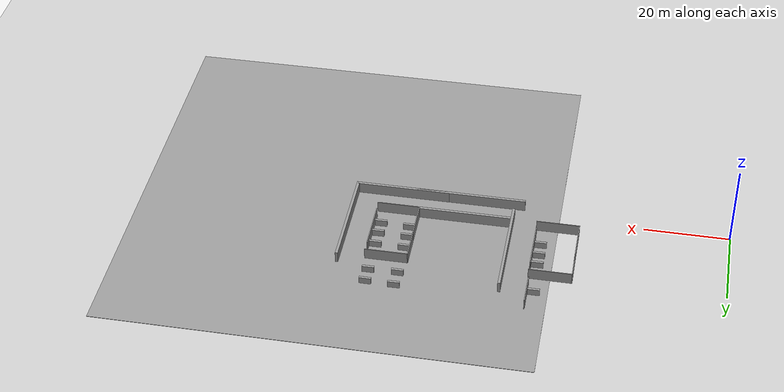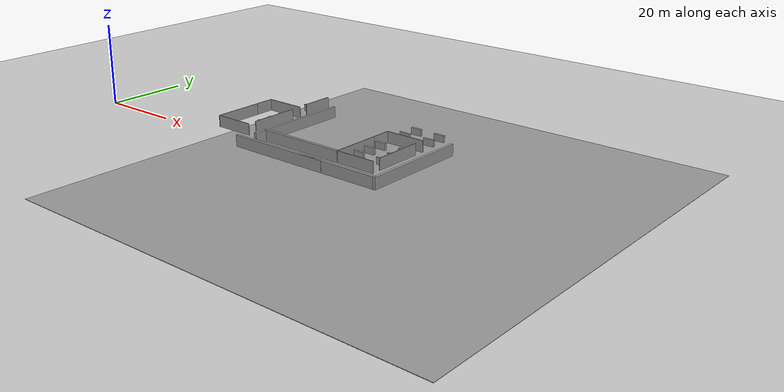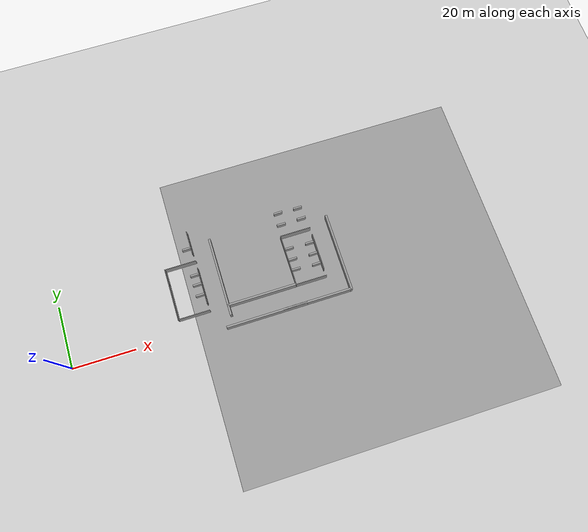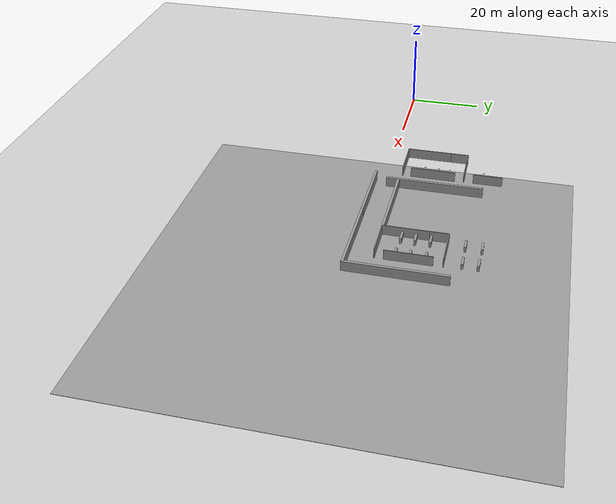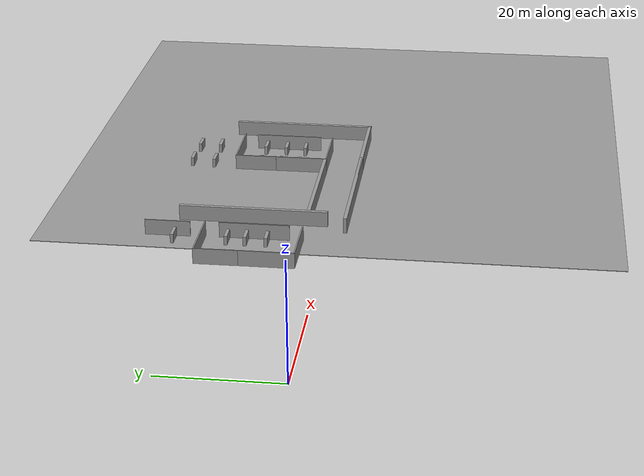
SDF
<sdf version="1.7">
 <world name="default">
  <model name="ground_plane">
   <static>1</static>
   <link name="link">
    <collision name="collision">
     <geometry><plane><normal>0 0 1</normal><size>100 100</size></plane></geometry>
     <surface><friction><ode><mu>100</mu><mu2>50</mu2></ode></friction></surface>
    </collision>
    <visual name="visual">
     <cast_shadows>0</cast_shadows>
     <geometry><plane><normal>0 0 1</normal><size>100 100</size></plane></geometry>
     <material>
      <script><uri>file://media/materials/scripts/gazebo.material</uri><name>Gazebo/Grey</name></script>
     </material>
    </visual>
   </link>
  </model>
  <model name="grey_wall_long_1">
   <link name="link">
    <pose>0 0 1.37589 0 -0 0</pose>
    <inertial>
     <inertia><ixx>0</ixx><ixy>0</ixy><ixz>0</ixz><iyy>0</iyy><iyz>0</iyz><izz>0</izz></inertia>
     <mass>0</mass>
    </inertial>
    <visual name="visual">
     <cast_shadows>0</cast_shadows>
     <geometry><box><size>25.8815 0.642976 2.8</size></box></geometry>
     <material>
      <script>
       <uri>model://grey_wall/materials/scripts</uri>
       <uri>model://grey_wall/materials/textures</uri>
       <name>vrc/grey_wall</name>
      </script>
      <shader type="pixel"><normal_map>__default__</normal_map></shader>
      <ambient>1 1 1 1</ambient>
      <diffuse>1 1 1 1</diffuse>
      <specular>0 0 0 1</specular>
      <emissive>0 0 0 1</emissive>
     </material>
    </visual>
    <collision name="collision">
     <geometry><box><size>25.8815 0.642976 2.8</size></box></geometry>
     <surface>
      <friction>
       <ode><mu>1</mu><mu2>1</mu2><fdir1>0 0 0</fdir1><slip1>0</slip1><slip2>0</slip2></ode>
       <torsional>
        <coefficient>1</coefficient>
        <patch_radius>0</patch_radius>
        <surface_radius>0</surface_radius>
        <use_patch_radius>1</use_patch_radius>
        <ode><slip>0</slip></ode>
       </torsional>
      </friction>
      <bounce><restitution_coefficient>0</restitution_coefficient><threshold>1e+06</threshold></bounce>
      <contact>
       <collide_without_contact>0</collide_without_contact>
       <collide_without_contact_bitmask>1</collide_without_contact_bitmask>
       <collide_bitmask>1</collide_bitmask>
       <ode>
        <soft_cfm>0</soft_cfm>
        <soft_erp>0.2</soft_erp>
        <kp>1e+13</kp>
        <kd>1</kd>
        <max_vel>0.01</max_vel>
        <min_depth>0</min_depth>
       </ode>
       <bullet>
        <split_impulse>1</split_impulse>
        <split_impulse_penetration_threshold>-0.01</split_impulse_penetration_threshold>
        <soft_cfm>0</soft_cfm>
        <soft_erp>0.2</soft_erp>
        <kp>1e+13</kp>
        <kd>1</kd>
       </bullet>
      </contact>
     </surface>
    </collision>
   </link>
   <static>1</static>
   <pose>61.3257 -2.37865 0 0 -0 0</pose>
  </model>
  <model name="ground_plane_1">
   <static>1</static>
   <link name="link">
    <collision name="collision">
     <geometry><plane><normal>0 0 1</normal><size>100 100</size></plane></geometry>
     <surface><friction><ode><mu>100</mu><mu2>50</mu2></ode></friction></surface>
    </collision>
    <visual name="visual">
     <cast_shadows>0</cast_shadows>
     <geometry><plane><normal>0 0 1</normal><size>100 100</size></plane></geometry>
     <material>
      <script><uri>file://media/materials/scripts/gazebo.material</uri><name>Gazebo/Grey</name></script>
     </material>
    </visual>
   </link>
   <pose>89.798 0.232818 0 0 -0 0</pose>
  </model>
  <model name="jiaoshi_clone_clone_clone_2">
   <model name="grey_wall">
    <static>1</static>
    <link name="link">
     <pose>0 0 1.4 0 -0 0</pose>
     <collision name="collision"><geometry><box><size>7.5 0.2 2.8</size></box></geometry></collision>
     <visual name="visual">
      <cast_shadows>0</cast_shadows>
      <geometry><box><size>7.5 0.2 2.8</size></box></geometry>
      <material>
       <script>
        <uri>model://grey_wall/materials/scripts</uri>
        <uri>model://grey_wall/materials/textures</uri>
        <name>vrc/grey_wall</name>
       </script>
      </material>
     </visual>
    </link>
    <pose>-3.38172 4.2623 0 0 0 -1.56473</pose>
   </model>
   <model name="grey_wall_10m">
    <link name="link">
     <pose>1.25079 -0.023082 1.4 0 -0 0</pose>
     <inertial>
      <inertia><ixx>0</ixx><ixy>0</ixy><ixz>0</ixz><iyy>0</iyy><iyz>0</iyz><izz>0</izz></inertia>
      <mass>0</mass>
     </inertial>
     <visual name="visual">
      <cast_shadows>0</cast_shadows>
      <geometry><box><size>10.0157 0.2 2.8</size></box></geometry>
      <material>
       <script>
        <uri>model://grey_wall/materials/scripts</uri>
        <uri>model://grey_wall/materials/textures</uri>
        <name>vrc/grey_wall</name>
       </script>
       <shader type="pixel"/>
       <ambient>1 1 1 1</ambient>
       <diffuse>1 1 1 1</diffuse>
       <specular>0 0 0 1</specular>
       <emissive>0 0 0 1</emissive>
      </material>
     </visual>
     <collision name="collision">
      <geometry><box><size>10.0157 0.2 2.8</size></box></geometry>
      <surface>
       <friction>
        <ode><mu>1</mu><mu2>1</mu2><fdir1>0 0 0</fdir1><slip1>0</slip1><slip2>0</slip2></ode>
        <torsional>
         <coefficient>1</coefficient>
         <patch_radius>0</patch_radius>
         <surface_radius>0</surface_radius>
         <use_patch_radius>1</use_patch_radius>
         <ode><slip>0</slip></ode>
        </torsional>
       </friction>
       <bounce><restitution_coefficient>0</restitution_coefficient><threshold>1e+06</threshold></bounce>
       <contact>
        <collide_without_contact>0</collide_without_contact>
        <collide_without_contact_bitmask>1</collide_without_contact_bitmask>
        <collide_bitmask>1</collide_bitmask>
        <ode>
         <soft_cfm>0</soft_cfm>
         <soft_erp>0.2</soft_erp>
         <kp>1e+13</kp>
         <kd>1</kd>
         <max_vel>0.01</max_vel>
         <min_depth>0</min_depth>
        </ode>
        <bullet>
         <split_impulse>1</split_impulse>
         <split_impulse_penetration_threshold>-0.01</split_impulse_penetration_threshold>
         <soft_cfm>0</soft_cfm>
         <soft_erp>0.2</soft_erp>
         <kp>1e+13</kp>
         <kd>1</kd>
        </bullet>
       </contact>
      </surface>
     </collision>
    </link>
    <static>1</static>
    <pose>0.433183 -8.77625 0 0 -0 0</pose>
   </model>
   <model name="grey_wall_10m_0">
    <link name="link">
     <pose>1.25079 -0.023082 1.4 0 -0 0</pose>
     <inertial>
      <inertia><ixx>0</ixx><ixy>0</ixy><ixz>0</ixz><iyy>0</iyy><iyz>0</iyz><izz>0</izz></inertia>
      <mass>0</mass>
     </inertial>
     <visual name="visual">
      <cast_shadows>0</cast_shadows>
      <geometry><box><size>10.0157 0.2 2.8</size></box></geometry>
      <material>
       <script>
        <uri>model://grey_wall/materials/scripts</uri>
        <uri>model://grey_wall/materials/textures</uri>
        <name>vrc/grey_wall</name>
       </script>
       <shader type="pixel"/>
       <ambient>1 1 1 1</ambient>
       <diffuse>1 1 1 1</diffuse>
       <specular>0 0 0 1</specular>
       <emissive>0 0 0 1</emissive>
      </material>
     </visual>
     <collision name="collision">
      <geometry><box><size>10.0157 0.2 2.8</size></box></geometry>
      <surface>
       <friction>
        <ode><mu>1</mu><mu2>1</mu2><fdir1>0 0 0</fdir1><slip1>0</slip1><slip2>0</slip2></ode>
        <torsional>
         <coefficient>1</coefficient>
         <patch_radius>0</patch_radius>
         <surface_radius>0</surface_radius>
         <use_patch_radius>1</use_patch_radius>
         <ode><slip>0</slip></ode>
        </torsional>
       </friction>
       <bounce><restitution_coefficient>0</restitution_coefficient><threshold>1e+06</threshold></bounce>
       <contact>
        <collide_without_contact>0</collide_without_contact>
        <collide_without_contact_bitmask>1</collide_without_contact_bitmask>
        <collide_bitmask>1</collide_bitmask>
        <ode>
         <soft_cfm>0</soft_cfm>
         <soft_erp>0.2</soft_erp>
         <kp>1e+13</kp>
         <kd>1</kd>
         <max_vel>0.01</max_vel>
         <min_depth>0</min_depth>
        </ode>
        <bullet>
         <split_impulse>1</split_impulse>
         <split_impulse_penetration_threshold>-0.01</split_impulse_penetration_threshold>
         <soft_cfm>0</soft_cfm>
         <soft_erp>0.2</soft_erp>
         <kp>1e+13</kp>
         <kd>1</kd>
        </bullet>
       </contact>
      </surface>
     </collision>
    </link>
    <static>1</static>
    <pose>0.377364 7.92573 0 0 -0 0</pose>
   </model>
   <model name="grey_wall_12m_vertial">
    <link name="link">
     <pose>0.289112 -0.003891 1.4 0 0 -1.5701</pose>
     <inertial>
      <inertia><ixx>0</ixx><ixy>0</ixy><ixz>0</ixz><iyy>0</iyy><iyz>0</iyz><izz>0</izz></inertia>
      <mass>0</mass>
     </inertial>
     <visual name="visual">
      <cast_shadows>0</cast_shadows>
      <geometry><box><size>12.0527 0.2 2.8</size></box></geometry>
      <material>
       <script>
        <uri>model://grey_wall/materials/scripts</uri>
        <uri>model://grey_wall/materials/textures</uri>
        <name>vrc/grey_wall</name>
       </script>
       <shader type="pixel"/>
       <ambient>1 1 1 1</ambient>
       <diffuse>1 1 1 1</diffuse>
       <specular>0 0 0 1</specular>
       <emissive>0 0 0 1</emissive>
      </material>
     </visual>
     <collision name="collision">
      <geometry><box><size>12.0527 0.2 2.8</size></box></geometry>
      <surface>
       <friction>
        <ode><mu>1</mu><mu2>1</mu2><fdir1>0 0 0</fdir1><slip1>0</slip1><slip2>0</slip2></ode>
        <torsional>
         <coefficient>1</coefficient>
         <patch_radius>0</patch_radius>
         <surface_radius>0</surface_radius>
         <use_patch_radius>1</use_patch_radius>
         <ode><slip>0</slip></ode>
        </torsional>
       </friction>
       <bounce><restitution_coefficient>0</restitution_coefficient><threshold>1e+06</threshold></bounce>
       <contact>
        <collide_without_contact>0</collide_without_contact>
        <collide_without_contact_bitmask>1</collide_without_contact_bitmask>
        <collide_bitmask>1</collide_bitmask>
        <ode>
         <soft_cfm>0</soft_cfm>
         <soft_erp>0.2</soft_erp>
         <kp>1e+13</kp>
         <kd>1</kd>
         <max_vel>0.01</max_vel>
         <min_depth>0</min_depth>
        </ode>
        <bullet>
         <split_impulse>1</split_impulse>
         <split_impulse_penetration_threshold>-0.01</split_impulse_penetration_threshold>
         <soft_cfm>0</soft_cfm>
         <soft_erp>0.2</soft_erp>
         <kp>1e+13</kp>
         <kd>1</kd>
        </bullet>
       </contact>
      </surface>
     </collision>
    </link>
    <static>1</static>
    <pose>-3.63668 -2.87268 0 0 -0 0</pose>
   </model>
   <model name="grey_wall_12m_vertial_0">
    <link name="link">
     <pose>0.289112 -0.003891 1.4 0 0 -1.5701</pose>
     <inertial>
      <inertia><ixx>0</ixx><ixy>0</ixy><ixz>0</ixz><iyy>0</iyy><iyz>0</iyz><izz>0</izz></inertia>
      <mass>0</mass>
     </inertial>
     <visual name="visual">
      <cast_shadows>0</cast_shadows>
      <geometry><box><size>12.0527 0.2 2.8</size></box></geometry>
      <material>
       <script>
        <uri>model://grey_wall/materials/scripts</uri>
        <uri>model://grey_wall/materials/textures</uri>
        <name>vrc/grey_wall</name>
       </script>
       <shader type="pixel"/>
       <ambient>1 1 1 1</ambient>
       <diffuse>1 1 1 1</diffuse>
       <specular>0 0 0 1</specular>
       <emissive>0 0 0 1</emissive>
      </material>
     </visual>
     <collision name="collision">
      <geometry><box><size>12.0527 0.2 2.8</size></box></geometry>
      <surface>
       <friction>
        <ode><mu>1</mu><mu2>1</mu2><fdir1>0 0 0</fdir1><slip1>0</slip1><slip2>0</slip2></ode>
        <torsional>
         <coefficient>1</coefficient>
         <patch_radius>0</patch_radius>
         <surface_radius>0</surface_radius>
         <use_patch_radius>1</use_patch_radius>
         <ode><slip>0</slip></ode>
        </torsional>
       </friction>
       <bounce><restitution_coefficient>0</restitution_coefficient><threshold>1e+06</threshold></bounce>
       <contact>
        <collide_without_contact>0</collide_without_contact>
        <collide_without_contact_bitmask>1</collide_without_contact_bitmask>
        <collide_bitmask>1</collide_bitmask>
        <ode>
         <soft_cfm>0</soft_cfm>
         <soft_erp>0.2</soft_erp>
         <kp>1e+13</kp>
         <kd>1</kd>
         <max_vel>0.01</max_vel>
         <min_depth>0</min_depth>
        </ode>
        <bullet>
         <split_impulse>1</split_impulse>
         <split_impulse_penetration_threshold>-0.01</split_impulse_penetration_threshold>
         <soft_cfm>0</soft_cfm>
         <soft_erp>0.2</soft_erp>
         <kp>1e+13</kp>
         <kd>1</kd>
        </bullet>
       </contact>
      </surface>
     </collision>
    </link>
    <static>1</static>
    <pose>6.20786 -0.539083 0 0 -0 0</pose>
   </model>
   <static>0</static>
   <pose>38.2185 13.1543 0 0 -0 0</pose>
  </model>
  <model name="grey_wall_long_term_clone_1">
   <link name="link">
    <pose>-1.74587 -0.378849 1.37589 0 -0 0</pose>
    <inertial>
     <inertia><ixx>0</ixx><ixy>0</ixy><ixz>0</ixz><iyy>0</iyy><iyz>0</iyz><izz>0</izz></inertia>
     <mass>0</mass>
    </inertial>
    <visual name="visual">
     <cast_shadows>0</cast_shadows>
     <geometry><box><size>22.1596 0.642976 2.8</size></box></geometry>
     <material>
      <script>
       <uri>model://grey_wall/materials/scripts</uri>
       <uri>model://grey_wall/materials/textures</uri>
       <name>vrc/grey_wall</name>
      </script>
      <shader type="pixel"><normal_map>__default__</normal_map></shader>
      <ambient>1 1 1 1</ambient>
      <diffuse>1 1 1 1</diffuse>
      <specular>0 0 0 1</specular>
      <emissive>0 0 0 1</emissive>
     </material>
    </visual>
    <collision name="collision">
     <geometry><box><size>22.1596 0.642976 2.8</size></box></geometry>
     <surface>
      <friction>
       <ode><mu>1</mu><mu2>1</mu2><fdir1>0 0 0</fdir1><slip1>0</slip1><slip2>0</slip2></ode>
       <torsional>
        <coefficient>1</coefficient>
        <patch_radius>0</patch_radius>
        <surface_radius>0</surface_radius>
        <use_patch_radius>1</use_patch_radius>
        <ode><slip>0</slip></ode>
       </torsional>
      </friction>
      <bounce><restitution_coefficient>0</restitution_coefficient><threshold>1e+06</threshold></bounce>
      <contact>
       <collide_without_contact>0</collide_without_contact>
       <collide_without_contact_bitmask>1</collide_without_contact_bitmask>
       <collide_bitmask>1</collide_bitmask>
       <ode>
        <soft_cfm>0</soft_cfm>
        <soft_erp>0.2</soft_erp>
        <kp>1e+13</kp>
        <kd>1</kd>
        <max_vel>0.01</max_vel>
        <min_depth>0</min_depth>
       </ode>
       <bullet>
        <split_impulse>1</split_impulse>
        <split_impulse_penetration_threshold>-0.01</split_impulse_penetration_threshold>
        <soft_cfm>0</soft_cfm>
        <soft_erp>0.2</soft_erp>
        <kp>1e+13</kp>
        <kd>1</kd>
       </bullet>
      </contact>
     </surface>
    </collision>
   </link>
   <static>1</static>
   <pose>63.3055 4.59056 0 0 -0 0</pose>
  </model>
  <model name="jiaoshi_clone_clone_clone_0_clone_1">
   <model name="grey_wall">
    <static>1</static>
    <link name="link">
     <pose>0 0 1.4 0 -0 0</pose>
     <collision name="collision"><geometry><box><size>7.5 0.2 2.8</size></box></geometry></collision>
     <visual name="visual">
      <cast_shadows>0</cast_shadows>
      <geometry><box><size>7.5 0.2 2.8</size></box></geometry>
      <material>
       <script>
        <uri>model://grey_wall/materials/scripts</uri>
        <uri>model://grey_wall/materials/textures</uri>
        <name>vrc/grey_wall</name>
       </script>
      </material>
     </visual>
    </link>
    <pose>-3.38172 4.2623 0 0 0 -1.56473</pose>
   </model>
   <model name="grey_wall_10m">
    <link name="link">
     <pose>1.25079 -0.023082 1.4 0 -0 0</pose>
     <inertial>
      <inertia><ixx>0</ixx><ixy>0</ixy><ixz>0</ixz><iyy>0</iyy><iyz>0</iyz><izz>0</izz></inertia>
      <mass>0</mass>
     </inertial>
     <visual name="visual">
      <cast_shadows>0</cast_shadows>
      <geometry><box><size>10.0157 0.2 2.8</size></box></geometry>
      <material>
       <script>
        <uri>model://grey_wall/materials/scripts</uri>
        <uri>model://grey_wall/materials/textures</uri>
        <name>vrc/grey_wall</name>
       </script>
       <shader type="pixel"/>
       <ambient>1 1 1 1</ambient>
       <diffuse>1 1 1 1</diffuse>
       <specular>0 0 0 1</specular>
       <emissive>0 0 0 1</emissive>
      </material>
     </visual>
     <collision name="collision">
      <geometry><box><size>10.0157 0.2 2.8</size></box></geometry>
      <surface>
       <friction>
        <ode><mu>1</mu><mu2>1</mu2><fdir1>0 0 0</fdir1><slip1>0</slip1><slip2>0</slip2></ode>
        <torsional>
         <coefficient>1</coefficient>
         <patch_radius>0</patch_radius>
         <surface_radius>0</surface_radius>
         <use_patch_radius>1</use_patch_radius>
         <ode><slip>0</slip></ode>
        </torsional>
       </friction>
       <bounce><restitution_coefficient>0</restitution_coefficient><threshold>1e+06</threshold></bounce>
       <contact>
        <collide_without_contact>0</collide_without_contact>
        <collide_without_contact_bitmask>1</collide_without_contact_bitmask>
        <collide_bitmask>1</collide_bitmask>
        <ode>
         <soft_cfm>0</soft_cfm>
         <soft_erp>0.2</soft_erp>
         <kp>1e+13</kp>
         <kd>1</kd>
         <max_vel>0.01</max_vel>
         <min_depth>0</min_depth>
        </ode>
        <bullet>
         <split_impulse>1</split_impulse>
         <split_impulse_penetration_threshold>-0.01</split_impulse_penetration_threshold>
         <soft_cfm>0</soft_cfm>
         <soft_erp>0.2</soft_erp>
         <kp>1e+13</kp>
         <kd>1</kd>
        </bullet>
       </contact>
      </surface>
     </collision>
    </link>
    <static>1</static>
    <pose>0.433183 -8.77625 0 0 -0 0</pose>
   </model>
   <model name="grey_wall_10m_0">
    <link name="link">
     <pose>1.25079 -0.023082 1.4 0 -0 0</pose>
     <inertial>
      <inertia><ixx>0</ixx><ixy>0</ixy><ixz>0</ixz><iyy>0</iyy><iyz>0</iyz><izz>0</izz></inertia>
      <mass>0</mass>
     </inertial>
     <visual name="visual">
      <cast_shadows>0</cast_shadows>
      <geometry><box><size>10.0157 0.2 2.8</size></box></geometry>
      <material>
       <script>
        <uri>model://grey_wall/materials/scripts</uri>
        <uri>model://grey_wall/materials/textures</uri>
        <name>vrc/grey_wall</name>
       </script>
       <shader type="pixel"/>
       <ambient>1 1 1 1</ambient>
       <diffuse>1 1 1 1</diffuse>
       <specular>0 0 0 1</specular>
       <emissive>0 0 0 1</emissive>
      </material>
     </visual>
     <collision name="collision">
      <geometry><box><size>10.0157 0.2 2.8</size></box></geometry>
      <surface>
       <friction>
        <ode><mu>1</mu><mu2>1</mu2><fdir1>0 0 0</fdir1><slip1>0</slip1><slip2>0</slip2></ode>
        <torsional>
         <coefficient>1</coefficient>
         <patch_radius>0</patch_radius>
         <surface_radius>0</surface_radius>
         <use_patch_radius>1</use_patch_radius>
         <ode><slip>0</slip></ode>
        </torsional>
       </friction>
       <bounce><restitution_coefficient>0</restitution_coefficient><threshold>1e+06</threshold></bounce>
       <contact>
        <collide_without_contact>0</collide_without_contact>
        <collide_without_contact_bitmask>1</collide_without_contact_bitmask>
        <collide_bitmask>1</collide_bitmask>
        <ode>
         <soft_cfm>0</soft_cfm>
         <soft_erp>0.2</soft_erp>
         <kp>1e+13</kp>
         <kd>1</kd>
         <max_vel>0.01</max_vel>
         <min_depth>0</min_depth>
        </ode>
        <bullet>
         <split_impulse>1</split_impulse>
         <split_impulse_penetration_threshold>-0.01</split_impulse_penetration_threshold>
         <soft_cfm>0</soft_cfm>
         <soft_erp>0.2</soft_erp>
         <kp>1e+13</kp>
         <kd>1</kd>
        </bullet>
       </contact>
      </surface>
     </collision>
    </link>
    <static>1</static>
    <pose>0.377364 7.92573 0 0 -0 0</pose>
   </model>
   <model name="grey_wall_12m_vertial">
    <link name="link">
     <pose>0.289112 -0.003891 1.4 0 0 -1.5701</pose>
     <inertial>
      <inertia><ixx>0</ixx><ixy>0</ixy><ixz>0</ixz><iyy>0</iyy><iyz>0</iyz><izz>0</izz></inertia>
      <mass>0</mass>
     </inertial>
     <visual name="visual">
      <cast_shadows>0</cast_shadows>
      <geometry><box><size>12.0527 0.2 2.8</size></box></geometry>
      <material>
       <script>
        <uri>model://grey_wall/materials/scripts</uri>
        <uri>model://grey_wall/materials/textures</uri>
        <name>vrc/grey_wall</name>
       </script>
       <shader type="pixel"/>
       <ambient>1 1 1 1</ambient>
       <diffuse>1 1 1 1</diffuse>
       <specular>0 0 0 1</specular>
       <emissive>0 0 0 1</emissive>
      </material>
     </visual>
     <collision name="collision">
      <geometry><box><size>12.0527 0.2 2.8</size></box></geometry>
      <surface>
       <friction>
        <ode><mu>1</mu><mu2>1</mu2><fdir1>0 0 0</fdir1><slip1>0</slip1><slip2>0</slip2></ode>
        <torsional>
         <coefficient>1</coefficient>
         <patch_radius>0</patch_radius>
         <surface_radius>0</surface_radius>
         <use_patch_radius>1</use_patch_radius>
         <ode><slip>0</slip></ode>
        </torsional>
       </friction>
       <bounce><restitution_coefficient>0</restitution_coefficient><threshold>1e+06</threshold></bounce>
       <contact>
        <collide_without_contact>0</collide_without_contact>
        <collide_without_contact_bitmask>1</collide_without_contact_bitmask>
        <collide_bitmask>1</collide_bitmask>
        <ode>
         <soft_cfm>0</soft_cfm>
         <soft_erp>0.2</soft_erp>
         <kp>1e+13</kp>
         <kd>1</kd>
         <max_vel>0.01</max_vel>
         <min_depth>0</min_depth>
        </ode>
        <bullet>
         <split_impulse>1</split_impulse>
         <split_impulse_penetration_threshold>-0.01</split_impulse_penetration_threshold>
         <soft_cfm>0</soft_cfm>
         <soft_erp>0.2</soft_erp>
         <kp>1e+13</kp>
         <kd>1</kd>
        </bullet>
       </contact>
      </surface>
     </collision>
    </link>
    <static>1</static>
    <pose>-3.63668 -2.87268 0 0 -0 0</pose>
   </model>
   <model name="grey_wall_12m_vertial_0">
    <link name="link">
     <pose>0.289112 -0.003891 1.4 0 0 -1.5701</pose>
     <inertial>
      <inertia><ixx>0</ixx><ixy>0</ixy><ixz>0</ixz><iyy>0</iyy><iyz>0</iyz><izz>0</izz></inertia>
      <mass>0</mass>
     </inertial>
     <visual name="visual">
      <cast_shadows>0</cast_shadows>
      <geometry><box><size>12.0527 0.2 2.8</size></box></geometry>
      <material>
       <script>
        <uri>model://grey_wall/materials/scripts</uri>
        <uri>model://grey_wall/materials/textures</uri>
        <name>vrc/grey_wall</name>
       </script>
       <shader type="pixel"/>
       <ambient>1 1 1 1</ambient>
       <diffuse>1 1 1 1</diffuse>
       <specular>0 0 0 1</specular>
       <emissive>0 0 0 1</emissive>
      </material>
     </visual>
     <collision name="collision">
      <geometry><box><size>12.0527 0.2 2.8</size></box></geometry>
      <surface>
       <friction>
        <ode><mu>1</mu><mu2>1</mu2><fdir1>0 0 0</fdir1><slip1>0</slip1><slip2>0</slip2></ode>
        <torsional>
         <coefficient>1</coefficient>
         <patch_radius>0</patch_radius>
         <surface_radius>0</surface_radius>
         <use_patch_radius>1</use_patch_radius>
         <ode><slip>0</slip></ode>
        </torsional>
       </friction>
       <bounce><restitution_coefficient>0</restitution_coefficient><threshold>1e+06</threshold></bounce>
       <contact>
        <collide_without_contact>0</collide_without_contact>
        <collide_without_contact_bitmask>1</collide_without_contact_bitmask>
        <collide_bitmask>1</collide_bitmask>
        <ode>
         <soft_cfm>0</soft_cfm>
         <soft_erp>0.2</soft_erp>
         <kp>1e+13</kp>
         <kd>1</kd>
         <max_vel>0.01</max_vel>
         <min_depth>0</min_depth>
        </ode>
        <bullet>
         <split_impulse>1</split_impulse>
         <split_impulse_penetration_threshold>-0.01</split_impulse_penetration_threshold>
         <soft_cfm>0</soft_cfm>
         <soft_erp>0.2</soft_erp>
         <kp>1e+13</kp>
         <kd>1</kd>
        </bullet>
       </contact>
      </surface>
     </collision>
    </link>
    <static>1</static>
    <pose>6.20786 -0.539083 0 0 -0 0</pose>
   </model>
   <static>0</static>
   <pose>76.0857 12.842 0 0 -0 0</pose>
  </model>
  <model name="grew_wall_long_vertial_1_clone_clone_1_clone">
   <model name="grey_wall_long">
    <link name="link">
     <pose>0 0 1.37589 0 -0 0</pose>
     <inertial>
      <inertia><ixx>0</ixx><ixy>0</ixy><ixz>0</ixz><iyy>0</iyy><iyz>0</iyz><izz>0</izz></inertia>
      <mass>0</mass>
     </inertial>
     <visual name="visual">
      <cast_shadows>0</cast_shadows>
      <geometry><box><size>25.8815 0.642976 2.8</size></box></geometry>
      <material>
       <script>
        <uri>model://grey_wall/materials/scripts</uri>
        <uri>model://grey_wall/materials/textures</uri>
        <name>vrc/grey_wall</name>
       </script>
       <shader type="pixel"><normal_map>__default__</normal_map></shader>
       <ambient>1 1 1 1</ambient>
       <diffuse>1 1 1 1</diffuse>
       <specular>0 0 0 1</specular>
       <emissive>0 0 0 1</emissive>
      </material>
     </visual>
     <collision name="collision">
      <geometry><box><size>25.8815 0.642976 2.8</size></box></geometry>
      <surface>
       <friction>
        <ode><mu>1</mu><mu2>1</mu2><fdir1>0 0 0</fdir1><slip1>0</slip1><slip2>0</slip2></ode>
        <torsional>
         <coefficient>1</coefficient>
         <patch_radius>0</patch_radius>
         <surface_radius>0</surface_radius>
         <use_patch_radius>1</use_patch_radius>
         <ode><slip>0</slip></ode>
        </torsional>
       </friction>
       <bounce><restitution_coefficient>0</restitution_coefficient><threshold>1e+06</threshold></bounce>
       <contact>
        <collide_without_contact>0</collide_without_contact>
        <collide_without_contact_bitmask>1</collide_without_contact_bitmask>
        <collide_bitmask>1</collide_bitmask>
        <ode>
         <soft_cfm>0</soft_cfm>
         <soft_erp>0.2</soft_erp>
         <kp>1e+13</kp>
         <kd>1</kd>
         <max_vel>0.01</max_vel>
         <min_depth>0</min_depth>
        </ode>
        <bullet>
         <split_impulse>1</split_impulse>
         <split_impulse_penetration_threshold>-0.01</split_impulse_penetration_threshold>
         <soft_cfm>0</soft_cfm>
         <soft_erp>0.2</soft_erp>
         <kp>1e+13</kp>
         <kd>1</kd>
        </bullet>
       </contact>
      </surface>
     </collision>
    </link>
    <static>1</static>
    <pose>1e-06 -0 0 0 -0 1.57003</pose>
   </model>
   <static>0</static>
   <pose>88.7842 10.2506 0 0 -0 0</pose>
  </model>
  <model name="grey_wall_long_term_clone_0_clone_0">
   <link name="link">
    <pose>-1.74587 -0.378849 1.37589 0 -0 0</pose>
    <inertial>
     <inertia><ixx>0</ixx><ixy>0</ixy><ixz>0</ixz><iyy>0</iyy><iyz>0</iyz><izz>0</izz></inertia>
     <mass>0</mass>
    </inertial>
    <visual name="visual">
     <cast_shadows>0</cast_shadows>
     <geometry><box><size>22.1596 0.642976 2.8</size></box></geometry>
     <material>
      <script>
       <uri>model://grey_wall/materials/scripts</uri>
       <uri>model://grey_wall/materials/textures</uri>
       <name>vrc/grey_wall</name>
      </script>
      <shader type="pixel"><normal_map>__default__</normal_map></shader>
      <ambient>1 1 1 1</ambient>
      <diffuse>1 1 1 1</diffuse>
      <specular>0 0 0 1</specular>
      <emissive>0 0 0 1</emissive>
     </material>
    </visual>
    <collision name="collision">
     <geometry><box><size>22.1596 0.642976 2.8</size></box></geometry>
     <surface>
      <friction>
       <ode><mu>1</mu><mu2>1</mu2><fdir1>0 0 0</fdir1><slip1>0</slip1><slip2>0</slip2></ode>
       <torsional>
        <coefficient>1</coefficient>
        <patch_radius>0</patch_radius>
        <surface_radius>0</surface_radius>
        <use_patch_radius>1</use_patch_radius>
        <ode><slip>0</slip></ode>
       </torsional>
      </friction>
      <bounce><restitution_coefficient>0</restitution_coefficient><threshold>1e+06</threshold></bounce>
      <contact>
       <collide_without_contact>0</collide_without_contact>
       <collide_without_contact_bitmask>1</collide_without_contact_bitmask>
       <collide_bitmask>1</collide_bitmask>
       <ode>
        <soft_cfm>0</soft_cfm>
        <soft_erp>0.2</soft_erp>
        <kp>1e+13</kp>
        <kd>1</kd>
        <max_vel>0.01</max_vel>
        <min_depth>0</min_depth>
       </ode>
       <bullet>
        <split_impulse>1</split_impulse>
        <split_impulse_penetration_threshold>-0.01</split_impulse_penetration_threshold>
        <soft_cfm>0</soft_cfm>
        <soft_erp>0.2</soft_erp>
        <kp>1e+13</kp>
        <kd>1</kd>
       </bullet>
      </contact>
     </surface>
    </collision>
   </link>
   <static>1</static>
   <pose>79.4268 -1.97771 0 0 -0 0</pose>
  </model>
  <model name="unit_box_clone_27">
   <pose>42.9421 26.1855 0.834396 -0 -3.2e-05 0.009633</pose>
   <link name="link">
    <inertial>
     <mass>1</mass>
     <inertia>
      <ixx>0.166667</ixx>
      <ixy>0</ixy>
      <ixz>0</ixz>
      <iyy>0.166667</iyy>
      <iyz>0</iyz>
      <izz>0.166667</izz>
     </inertia>
    </inertial>
    <collision name="collision"><geometry><box><size>2.81196 0.562598 1.66888</size></box></geometry></collision>
    <visual name="visual">
     <geometry><box><size>2.81196 0.562598 1.66888</size></box></geometry>
     <material>
      <script><name>Gazebo/Grey</name><uri>file://media/materials/scripts/gazebo.material</uri></script>
     </material>
    </visual>
   </link>
  </model>
  <model name="unit_box_clone_29">
   <pose>43.1966 17.0437 0.834396 0 -3.2e-05 0.009334</pose>
   <link name="link">
    <inertial>
     <mass>1</mass>
     <inertia>
      <ixx>0.166667</ixx>
      <ixy>0</ixy>
      <ixz>0</ixz>
      <iyy>0.166667</iyy>
      <iyz>0</iyz>
      <izz>0.166667</izz>
     </inertia>
    </inertial>
    <collision name="collision"><geometry><box><size>2.81196 0.562598 1.66888</size></box></geometry></collision>
    <visual name="visual">
     <geometry><box><size>2.81196 0.562598 1.66888</size></box></geometry>
     <material>
      <script><name>Gazebo/Grey</name><uri>file://media/materials/scripts/gazebo.material</uri></script>
     </material>
    </visual>
   </link>
  </model>
  <model name="unit_box_clone_31">
   <pose>43.1953 13.8123 0.834396 -0 -3.2e-05 0.009805</pose>
   <link name="link">
    <inertial>
     <mass>1</mass>
     <inertia>
      <ixx>0.166667</ixx>
      <ixy>0</ixy>
      <ixz>0</ixz>
      <iyy>0.166667</iyy>
      <iyz>0</iyz>
      <izz>0.166667</izz>
     </inertia>
    </inertial>
    <collision name="collision"><geometry><box><size>2.81196 0.562598 1.66888</size></box></geometry></collision>
    <visual name="visual">
     <geometry><box><size>2.81196 0.562598 1.66888</size></box></geometry>
     <material>
      <script><name>Gazebo/Grey</name><uri>file://media/materials/scripts/gazebo.material</uri></script>
     </material>
    </visual>
   </link>
  </model>
  <model name="unit_box_clone_33">
   <pose>43.1968 10.2517 0.834396 -0 -3.2e-05 0.012674</pose>
   <link name="link">
    <inertial>
     <mass>1</mass>
     <inertia>
      <ixx>0.166667</ixx>
      <ixy>0</ixy>
      <ixz>0</ixz>
      <iyy>0.166667</iyy>
      <iyz>0</iyz>
      <izz>0.166667</izz>
     </inertia>
    </inertial>
    <collision name="collision"><geometry><box><size>2.81196 0.562598 1.66888</size></box></geometry></collision>
    <visual name="visual">
     <geometry><box><size>2.81196 0.562598 1.66888</size></box></geometry>
     <material>
      <script><name>Gazebo/Grey</name><uri>file://media/materials/scripts/gazebo.material</uri></script>
     </material>
    </visual>
   </link>
  </model>
  <model name="unit_box_clone_42">
   <pose>74.3755 29.1594 0.834396 -0 -3.2e-05 0.012175</pose>
   <link name="link">
    <inertial>
     <mass>1</mass>
     <inertia>
      <ixx>0.166667</ixx>
      <ixy>0</ixy>
      <ixz>0</ixz>
      <iyy>0.166667</iyy>
      <iyz>0</iyz>
      <izz>0.166667</izz>
     </inertia>
    </inertial>
    <collision name="collision"><geometry><box><size>2.81196 0.562598 1.66888</size></box></geometry></collision>
    <visual name="visual">
     <geometry><box><size>2.81196 0.562598 1.66888</size></box></geometry>
     <material>
      <script><name>Gazebo/Grey</name><uri>file://media/materials/scripts/gazebo.material</uri></script>
     </material>
    </visual>
   </link>
  </model>
  <model name="unit_box_clone_43">
   <pose>80.9928 28.9751 0.834396 -0 3.2e-05 -0.013922</pose>
   <link name="link">
    <inertial>
     <mass>1</mass>
     <inertia>
      <ixx>0.166667</ixx>
      <ixy>0</ixy>
      <ixz>0</ixz>
      <iyy>0.166667</iyy>
      <iyz>0</iyz>
      <izz>0.166667</izz>
     </inertia>
    </inertial>
    <collision name="collision"><geometry><box><size>2.81196 0.562598 1.66888</size></box></geometry></collision>
    <visual name="visual">
     <geometry><box><size>2.81196 0.562598 1.66888</size></box></geometry>
     <material>
      <script><name>Gazebo/Grey</name><uri>file://media/materials/scripts/gazebo.material</uri></script>
     </material>
    </visual>
   </link>
  </model>
  <model name="unit_box_clone_44">
   <pose>74.2489 25.0445 0.834396 0 -3.2e-05 -0.006527</pose>
   <link name="link">
    <inertial>
     <mass>1</mass>
     <inertia>
      <ixx>0.166667</ixx>
      <ixy>0</ixy>
      <ixz>0</ixz>
      <iyy>0.166667</iyy>
      <iyz>0</iyz>
      <izz>0.166667</izz>
     </inertia>
    </inertial>
    <collision name="collision"><geometry><box><size>2.81196 0.562598 1.66888</size></box></geometry></collision>
    <visual name="visual">
     <geometry><box><size>2.81196 0.562598 1.66888</size></box></geometry>
     <material>
      <script><name>Gazebo/Grey</name><uri>file://media/materials/scripts/gazebo.material</uri></script>
     </material>
    </visual>
   </link>
  </model>
  <model name="unit_box_clone_45">
   <pose>81.0409 25.1354 0.834396 -0 -3.2e-05 0.009931</pose>
   <link name="link">
    <inertial>
     <mass>1</mass>
     <inertia>
      <ixx>0.166667</ixx>
      <ixy>0</ixy>
      <ixz>0</ixz>
      <iyy>0.166667</iyy>
      <iyz>0</iyz>
      <izz>0.166667</izz>
     </inertia>
    </inertial>
    <collision name="collision"><geometry><box><size>2.81196 0.562598 1.66888</size></box></geometry></collision>
    <visual name="visual">
     <geometry><box><size>2.81196 0.562598 1.66888</size></box></geometry>
     <material>
      <script><name>Gazebo/Grey</name><uri>file://media/materials/scripts/gazebo.material</uri></script>
     </material>
    </visual>
   </link>
  </model>
  <model name="unit_box_clone_46">
   <pose>74.2636 16.5043 0.834396 0 -3.2e-05 -0.003754</pose>
   <link name="link">
    <inertial>
     <mass>1</mass>
     <inertia>
      <ixx>0.166667</ixx>
      <ixy>0</ixy>
      <ixz>0</ixz>
      <iyy>0.166667</iyy>
      <iyz>0</iyz>
      <izz>0.166667</izz>
     </inertia>
    </inertial>
    <collision name="collision"><geometry><box><size>2.81196 0.562598 1.66888</size></box></geometry></collision>
    <visual name="visual">
     <geometry><box><size>2.81196 0.562598 1.66888</size></box></geometry>
     <material>
      <script><name>Gazebo/Grey</name><uri>file://media/materials/scripts/gazebo.material</uri></script>
     </material>
    </visual>
   </link>
  </model>
  <model name="unit_box_clone_47">
   <pose>81.0476 16.3628 0.834396 -0 3.2e-05 -0.004739</pose>
   <link name="link">
    <inertial>
     <mass>1</mass>
     <inertia>
      <ixx>0.166667</ixx>
      <ixy>0</ixy>
      <ixz>0</ixz>
      <iyy>0.166667</iyy>
      <iyz>0</iyz>
      <izz>0.166667</izz>
     </inertia>
    </inertial>
    <collision name="collision"><geometry><box><size>2.81196 0.562598 1.66888</size></box></geometry></collision>
    <visual name="visual">
     <geometry><box><size>2.81196 0.562598 1.66888</size></box></geometry>
     <material>
      <script><name>Gazebo/Grey</name><uri>file://media/materials/scripts/gazebo.material</uri></script>
     </material>
    </visual>
   </link>
  </model>
  <model name="unit_box_clone_48">
   <pose>74.2715 12.7447 0.834396 0 -3.2e-05 0.012552</pose>
   <link name="link">
    <inertial>
     <mass>1</mass>
     <inertia>
      <ixx>0.166667</ixx>
      <ixy>0</ixy>
      <ixz>0</ixz>
      <iyy>0.166667</iyy>
      <iyz>0</iyz>
      <izz>0.166667</izz>
     </inertia>
    </inertial>
    <collision name="collision"><geometry><box><size>2.81196 0.562598 1.66888</size></box></geometry></collision>
    <visual name="visual">
     <geometry><box><size>2.81196 0.562598 1.66888</size></box></geometry>
     <material>
      <script><name>Gazebo/Grey</name><uri>file://media/materials/scripts/gazebo.material</uri></script>
     </material>
    </visual>
   </link>
  </model>
  <model name="unit_box_clone_49">
   <pose>81.0557 12.53 0.834396 0 -3.2e-05 0.013568</pose>
   <link name="link">
    <inertial>
     <mass>1</mass>
     <inertia>
      <ixx>0.166667</ixx>
      <ixy>0</ixy>
      <ixz>0</ixz>
      <iyy>0.166667</iyy>
      <iyz>0</iyz>
      <izz>0.166667</izz>
     </inertia>
    </inertial>
    <collision name="collision"><geometry><box><size>2.81196 0.562598 1.66888</size></box></geometry></collision>
    <visual name="visual">
     <geometry><box><size>2.81196 0.562598 1.66888</size></box></geometry>
     <material>
      <script><name>Gazebo/Grey</name><uri>file://media/materials/scripts/gazebo.material</uri></script>
     </material>
    </visual>
   </link>
  </model>
  <model name="unit_box_clone_50">
   <pose>74.2913 9.26008 0.834396 -0 3.2e-05 -0.013261</pose>
   <link name="link">
    <inertial>
     <mass>1</mass>
     <inertia>
      <ixx>0.166667</ixx>
      <ixy>0</ixy>
      <ixz>0</ixz>
      <iyy>0.166667</iyy>
      <iyz>0</iyz>
      <izz>0.166667</izz>
     </inertia>
    </inertial>
    <collision name="collision"><geometry><box><size>2.81196 0.562598 1.66888</size></box></geometry></collision>
    <visual name="visual">
     <geometry><box><size>2.81196 0.562598 1.66888</size></box></geometry>
     <material>
      <script><name>Gazebo/Grey</name><uri>file://media/materials/scripts/gazebo.material</uri></script>
     </material>
    </visual>
   </link>
  </model>
  <model name="unit_box_clone_51">
   <pose>81.0291 8.95708 0.834396 0 3.2e-05 0.013694</pose>
   <link name="link">
    <inertial>
     <mass>1</mass>
     <inertia>
      <ixx>0.166667</ixx>
      <ixy>0</ixy>
      <ixz>0</ixz>
      <iyy>0.166667</iyy>
      <iyz>0</iyz>
      <izz>0.166667</izz>
     </inertia>
    </inertial>
    <collision name="collision"><geometry><box><size>2.81196 0.562598 1.66888</size></box></geometry></collision>
    <visual name="visual">
     <geometry><box><size>2.81196 0.562598 1.66888</size></box></geometry>
     <material>
      <script><name>Gazebo/Grey</name><uri>file://media/materials/scripts/gazebo.material</uri></script>
     </material>
    </visual>
   </link>
  </model>
  <model name="grey_wall_high_clone_4_clone">
   <link name="link">
    <pose>0.546134 -0.568384 0.521109 0 -0 0</pose>
    <inertial>
     <inertia><ixx>0</ixx><ixy>0</ixy><ixz>0</ixz><iyy>0</iyy><iyz>0</iyz><izz>0</izz></inertia>
     <mass>0</mass>
    </inertial>
    <visual name="visual">
     <cast_shadows>0</cast_shadows>
     <geometry><box><size>7.82417 0.2 4.57376</size></box></geometry>
     <material>
      <script>
       <uri>model://grey_wall/materials/scripts</uri>
       <uri>model://grey_wall/materials/textures</uri>
       <name>vrc/grey_wall</name>
      </script>
      <shader type="pixel"/>
      <ambient>1 1 1 1</ambient>
      <diffuse>1 1 1 1</diffuse>
      <specular>0 0 0 1</specular>
      <emissive>0 0 0 1</emissive>
     </material>
    </visual>
    <collision name="collision">
     <geometry><box><size>7.82417 0.2 4.57376</size></box></geometry>
     <surface>
      <friction>
       <ode><mu>1</mu><mu2>1</mu2><fdir1>0 0 0</fdir1><slip1>0</slip1><slip2>0</slip2></ode>
       <torsional>
        <coefficient>1</coefficient>
        <patch_radius>0</patch_radius>
        <surface_radius>0</surface_radius>
        <use_patch_radius>1</use_patch_radius>
        <ode><slip>0</slip></ode>
       </torsional>
      </friction>
      <bounce><restitution_coefficient>0</restitution_coefficient><threshold>1e+06</threshold></bounce>
      <contact>
       <collide_without_contact>0</collide_without_contact>
       <collide_without_contact_bitmask>1</collide_without_contact_bitmask>
       <collide_bitmask>1</collide_bitmask>
       <ode>
        <soft_cfm>0</soft_cfm>
        <soft_erp>0.2</soft_erp>
        <kp>1e+13</kp>
        <kd>1</kd>
        <max_vel>0.01</max_vel>
        <min_depth>0</min_depth>
       </ode>
       <bullet>
        <split_impulse>1</split_impulse>
        <split_impulse_penetration_threshold>-0.01</split_impulse_penetration_threshold>
        <soft_cfm>0</soft_cfm>
        <soft_erp>0.2</soft_erp>
        <kp>1e+13</kp>
        <kd>1</kd>
       </bullet>
      </contact>
     </surface>
    </collision>
   </link>
   <static>1</static>
   <pose>45.0225 28.0194 -0 0 0 -1.56746</pose>
  </model>
  <model name="grew_wall_long_vertial_1_clone_clone_clone_clone">
   <model name="grey_wall_long">
    <link name="link">
     <pose>0 0 1.37589 0 -0 0</pose>
     <inertial>
      <inertia><ixx>0</ixx><ixy>0</ixy><ixz>0</ixz><iyy>0</iyy><iyz>0</iyz><izz>0</izz></inertia>
      <mass>0</mass>
     </inertial>
     <visual name="visual">
      <cast_shadows>0</cast_shadows>
      <geometry><box><size>25.8815 0.642976 2.8</size></box></geometry>
      <material>
       <script>
        <uri>model://grey_wall/materials/scripts</uri>
        <uri>model://grey_wall/materials/textures</uri>
        <name>vrc/grey_wall</name>
       </script>
       <shader type="pixel"><normal_map>__default__</normal_map></shader>
       <ambient>1 1 1 1</ambient>
       <diffuse>1 1 1 1</diffuse>
       <specular>0 0 0 1</specular>
       <emissive>0 0 0 1</emissive>
      </material>
     </visual>
     <collision name="collision">
      <geometry><box><size>25.8815 0.642976 2.8</size></box></geometry>
      <surface>
       <friction>
        <ode><mu>1</mu><mu2>1</mu2><fdir1>0 0 0</fdir1><slip1>0</slip1><slip2>0</slip2></ode>
        <torsional>
         <coefficient>1</coefficient>
         <patch_radius>0</patch_radius>
         <surface_radius>0</surface_radius>
         <use_patch_radius>1</use_patch_radius>
         <ode><slip>0</slip></ode>
        </torsional>
       </friction>
       <bounce><restitution_coefficient>0</restitution_coefficient><threshold>1e+06</threshold></bounce>
       <contact>
        <collide_without_contact>0</collide_without_contact>
        <collide_without_contact_bitmask>1</collide_without_contact_bitmask>
        <collide_bitmask>1</collide_bitmask>
        <ode>
         <soft_cfm>0</soft_cfm>
         <soft_erp>0.2</soft_erp>
         <kp>1e+13</kp>
         <kd>1</kd>
         <max_vel>0.01</max_vel>
         <min_depth>0</min_depth>
        </ode>
        <bullet>
         <split_impulse>1</split_impulse>
         <split_impulse_penetration_threshold>-0.01</split_impulse_penetration_threshold>
         <soft_cfm>0</soft_cfm>
         <soft_erp>0.2</soft_erp>
         <kp>1e+13</kp>
         <kd>1</kd>
        </bullet>
       </contact>
      </surface>
     </collision>
    </link>
    <static>1</static>
    <pose>1e-06 -0 0 0 -0 1.57003</pose>
   </model>
   <static>0</static>
   <pose>50.7511 13.8115 0 0 -0 0</pose>
  </model>
 </world>
</sdf>
